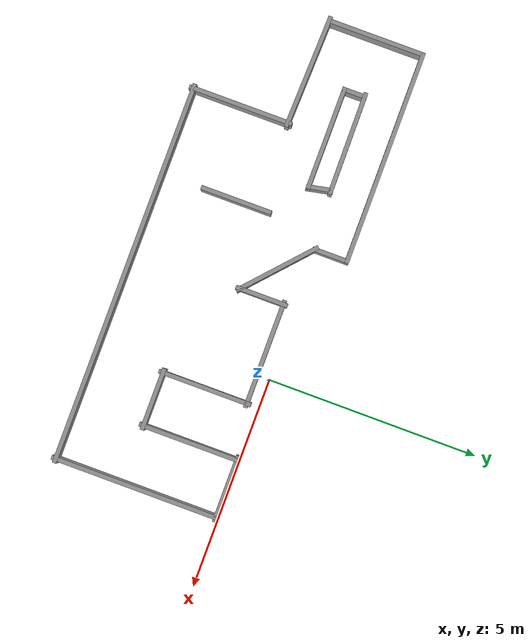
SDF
<?xml version='1.0'?>
<sdf version='1.5'>
  <model name='sensing_environment'>
    <link name='Wall_0'>
      <collision name='Wall_0_Collision'>
        <geometry>
          <box>
            <size>2.47599 0.1 0.5</size>
          </box>
        </geometry>
        <pose>0 0 0.25 0 -0 0</pose>
      </collision>
      <visual name='Wall_0_Visual'>
        <pose>0 0 0.25 0 -0 0</pose>
        <geometry>
          <box>
            <size>2.47599 0.1 0.5</size>
          </box>
        </geometry>
        <material>
          <script>
            <uri>file://media/materials/scripts/gazebo.material</uri>
            <name>Gazebo/Grey</name>
          </script>
        </material>
      </visual>
      <velocity_decay>
        <linear>0</linear>
        <angular>0</angular>
      </velocity_decay>
      <pose>-5.61297 -2.75592 0 0 0 -1.5708</pose>
    </link>
    <link name='Wall_1'>
      <collision name='Wall_1_Collision'>
        <geometry>
          <box>
            <size>9.13006 0.1 0.5</size>
          </box>
        </geometry>
        <pose>0 0 0.25 0 -0 0</pose>
      </collision>
      <visual name='Wall_1_Visual'>
        <pose>0 0 0.25 0 -0 0</pose>
        <geometry>
          <box>
            <size>9.13006 0.1 0.5</size>
          </box>
        </geometry>
        <material>
          <script>
            <uri>file://media/materials/scripts/gazebo.material</uri>
            <name>Gazebo/Grey</name>
          </script>
        </material>
      </visual>
      <velocity_decay>
        <linear>0</linear>
        <angular>0</angular>
      </velocity_decay>
      <pose>-1.14794 -3.89391 0 0 -0 0</pose>
    </link>
    <link name='Wall_10'>
      <collision name='Wall_10_Collision'>
        <geometry>
          <box>
            <size>0.886478 0.1 0.5</size>
          </box>
        </geometry>
        <pose>0 0 0.25 0 -0 0</pose>
      </collision>
      <visual name='Wall_10_Visual'>
        <pose>0 0 0.25 0 -0 0</pose>
        <geometry>
          <box>
            <size>0.886478 0.1 0.5</size>
          </box>
        </geometry>
        <material>
          <script>
            <uri>file://media/materials/scripts/gazebo.material</uri>
            <name>Gazebo/Grey</name>
          </script>
        </material>
      </visual>
      <velocity_decay>
        <linear>0</linear>
        <angular>0</angular>
      </velocity_decay>
      <pose>-3.12416 0.335761 0 0 -0 1.5704</pose>
    </link>
    <link name='Wall_11'>
      <collision name='Wall_11_Collision'>
        <geometry>
          <box>
            <size>5.097 0.1 0.5</size>
          </box>
        </geometry>
        <pose>0 0 0.25 0 -0 0</pose>
      </collision>
      <visual name='Wall_11_Visual'>
        <pose>0 0 0.25 0 -0 0</pose>
        <geometry>
          <box>
            <size>5.097 0.1 0.5</size>
          </box>
        </geometry>
        <material>
          <script>
            <uri>file://media/materials/scripts/gazebo.material</uri>
            <name>Gazebo/Grey</name>
          </script>
        </material>
      </visual>
      <velocity_decay>
        <linear>0</linear>
        <angular>0</angular>
      </velocity_decay>
      <pose>-5.6225 0.729 0 0 -0 3.14159</pose>
    </link>
    <link name='Wall_12'>
      <collision name='Wall_12_Collision'>
        <geometry>
          <box>
            <size>2.36684 0.1 0.5</size>
          </box>
        </geometry>
        <pose>0 0 0.25 0 -0 0</pose>
      </collision>
      <visual name='Wall_12_Visual'>
        <pose>0 0 0.25 0 -0 0</pose>
        <geometry>
          <box>
            <size>2.36684 0.1 0.5</size>
          </box>
        </geometry>
        <material>
          <script>
            <uri>file://media/materials/scripts/gazebo.material</uri>
            <name>Gazebo/Grey</name>
          </script>
        </material>
      </visual>
      <velocity_decay>
        <linear>0</linear>
        <angular>0</angular>
      </velocity_decay>
      <pose>-8.12076 -0.404419 0 0 0 -1.57058</pose>
    </link>
    <link name='Wall_13'>
      <collision name='Wall_13_Collision'>
        <geometry>
          <box>
            <size>2.70883 0.1 0.5</size>
          </box>
        </geometry>
        <pose>0 0 0.25 0 -0 0</pose>
      </collision>
      <visual name='Wall_13_Visual'>
        <pose>0 0 0.25 0 -0 0</pose>
        <geometry>
          <box>
            <size>2.70883 0.1 0.5</size>
          </box>
        </geometry>
        <material>
          <script>
            <uri>file://media/materials/scripts/gazebo.material</uri>
            <name>Gazebo/Grey</name>
          </script>
        </material>
      </visual>
      <velocity_decay>
        <linear>0</linear>
        <angular>0</angular>
      </velocity_decay>
      <pose>-6.86674 -1.57788 0 0 0 -0.031926</pose>
    </link>
    <link name='Wall_15'>
      <collision name='Wall_15_Collision'>
        <geometry>
          <box>
            <size>0.589506 0.1 0.5</size>
          </box>
        </geometry>
        <pose>0 0 0.25 0 -0 0</pose>
      </collision>
      <visual name='Wall_15_Visual'>
        <pose>0 0 0.25 0 -0 0</pose>
        <geometry>
          <box>
            <size>0.589506 0.1 0.5</size>
          </box>
        </geometry>
        <material>
          <script>
            <uri>file://media/materials/scripts/gazebo.material</uri>
            <name>Gazebo/Grey</name>
          </script>
        </material>
      </visual>
      <velocity_decay>
        <linear>0</linear>
        <angular>0</angular>
      </velocity_decay>
      <pose>-6.76516 -0.431247 0 0 0 -1.57015</pose>
    </link>
    <link name='Wall_16'>
      <collision name='Wall_16_Collision'>
        <geometry>
          <box>
            <size>2.456 0.1 0.5</size>
          </box>
        </geometry>
        <pose>0 0 0.25 0 -0 0</pose>
      </collision>
      <visual name='Wall_16_Visual'>
        <pose>0 0 0.25 0 -0 0</pose>
        <geometry>
          <box>
            <size>2.456 0.1 0.5</size>
          </box>
        </geometry>
        <material>
          <script>
            <uri>file://media/materials/scripts/gazebo.material</uri>
            <name>Gazebo/Grey</name>
          </script>
        </material>
      </visual>
      <velocity_decay>
        <linear>0</linear>
        <angular>0</angular>
      </velocity_decay>
      <pose>-5.587 -0.676 0 0 -0 0</pose>
    </link>
    <link name='Wall_17'>
      <collision name='Wall_17_Collision'>
        <geometry>
          <box>
            <size>0.616783 0.1 0.5</size>
          </box>
        </geometry>
        <pose>0 0 0.25 0 -0 0</pose>
      </collision>
      <visual name='Wall_17_Visual'>
        <pose>0 0 0.25 0 -0 0</pose>
        <geometry>
          <box>
            <size>0.616783 0.1 0.5</size>
          </box>
        </geometry>
        <material>
          <script>
            <uri>file://media/materials/scripts/gazebo.material</uri>
            <name>Gazebo/Grey</name>
          </script>
        </material>
      </visual>
      <velocity_decay>
        <linear>0</linear>
        <angular>0</angular>
      </velocity_decay>
      <pose>-4.45905 -0.422502 0 0 -0 1.76572</pose>
    </link>
    <link name='Wall_18'>
      <collision name='Wall_18_Collision'>
        <geometry>
          <box>
            <size>2.45629 0.1 0.5</size>
          </box>
        </geometry>
        <pose>0 0 0.25 0 -0 0</pose>
      </collision>
      <visual name='Wall_18_Visual'>
        <pose>0 0 0.25 0 -0 0</pose>
        <geometry>
          <box>
            <size>2.45629 0.1 0.5</size>
          </box>
        </geometry>
        <material>
          <script>
            <uri>file://media/materials/scripts/gazebo.material</uri>
            <name>Gazebo/Grey</name>
          </script>
        </material>
      </visual>
      <velocity_decay>
        <linear>0</linear>
        <angular>0</angular>
      </velocity_decay>
      <pose>-5.63721 -0.177749 0 0 0 -3.13384</pose>
    </link>
    <link name='Wall_2'>
      <collision name='Wall_2_Collision'>
        <geometry>
          <box>
            <size>4.03643 0.1 0.5</size>
          </box>
        </geometry>
        <pose>0 0 0.25 0 -0 0</pose>
      </collision>
      <visual name='Wall_2_Visual'>
        <pose>0 0 0.25 0 -0 0</pose>
        <geometry>
          <box>
            <size>4.03643 0.1 0.5</size>
          </box>
        </geometry>
        <material>
          <script>
            <uri>file://media/materials/scripts/gazebo.material</uri>
            <name>Gazebo/Grey</name>
          </script>
        </material>
      </visual>
      <velocity_decay>
        <linear>0</linear>
        <angular>0</angular>
      </velocity_decay>
      <pose>3.31709 -1.9757 0 0 -0 1.5708</pose>
    </link>
    <link name='Wall_20'>
      <collision name='Wall_20_Collision'>
        <geometry>
          <box>
            <size>1.68868 0.1 0.5</size>
          </box>
        </geometry>
        <pose>0 0 0.25 0 -0 0</pose>
      </collision>
      <visual name='Wall_20_Visual'>
        <pose>0 0 0.25 0 -0 0</pose>
        <geometry>
          <box>
            <size>1.68868 0.1 0.5</size>
          </box>
        </geometry>
        <material>
          <script>
            <uri>file://media/materials/scripts/gazebo.material</uri>
            <name>Gazebo/Grey</name>
          </script>
        </material>
      </visual>
      <velocity_decay>
        <linear>0</linear>
        <angular>0</angular>
      </velocity_decay>
      <pose>-3.561 -2.1035 0 0 0 -1.5708</pose>
    </link>
    <link name='Wall_3'>
      <collision name='Wall_3_Collision'>
        <geometry>
          <box>
            <size>1.5758 0.1 0.5</size>
          </box>
        </geometry>
        <pose>0 0 0.25 0 -0 0</pose>
      </collision>
      <visual name='Wall_3_Visual'>
        <pose>0 0 0.25 0 -0 0</pose>
        <geometry>
          <box>
            <size>1.5758 0.1 0.5</size>
          </box>
        </geometry>
        <material>
          <script>
            <uri>file://media/materials/scripts/gazebo.material</uri>
            <name>Gazebo/Grey</name>
          </script>
        </material>
      </visual>
      <velocity_decay>
        <linear>0</linear>
        <angular>0</angular>
      </velocity_decay>
      <pose>2.62919 -0.057478 0 0 -0 3.14159</pose>
    </link>
    <link name='Wall_4'>
      <collision name='Wall_4_Collision'>
        <geometry>
          <box>
            <size>2.44367 0.1 0.5</size>
          </box>
        </geometry>
        <pose>0 0 0.25 0 -0 0</pose>
      </collision>
      <visual name='Wall_4_Visual'>
        <pose>0 0 0.25 0 -0 0</pose>
        <geometry>
          <box>
            <size>2.44367 0.1 0.5</size>
          </box>
        </geometry>
        <material>
          <script>
            <uri>file://media/materials/scripts/gazebo.material</uri>
            <name>Gazebo/Grey</name>
          </script>
        </material>
      </visual>
      <velocity_decay>
        <linear>0</linear>
        <angular>0</angular>
      </velocity_decay>
      <pose>1.94129 -1.17931 0 0 0 -1.5708</pose>
    </link>
    <link name='Wall_5'>
      <collision name='Wall_5_Collision'>
        <geometry>
          <box>
            <size>1.47218 0.1 0.5</size>
          </box>
        </geometry>
        <pose>0 0 0.25 0 -0 0</pose>
      </collision>
      <visual name='Wall_5_Visual'>
        <pose>0 0 0.25 0 -0 0</pose>
        <geometry>
          <box>
            <size>1.47218 0.1 0.5</size>
          </box>
        </geometry>
        <material>
          <script>
            <uri>file://media/materials/scripts/gazebo.material</uri>
            <name>Gazebo/Grey</name>
          </script>
        </material>
      </visual>
      <velocity_decay>
        <linear>0</linear>
        <angular>0</angular>
      </velocity_decay>
      <pose>1.3052 -2.30115 0 0 -0 3.14159</pose>
    </link>
    <link name='Wall_6'>
      <collision name='Wall_6_Collision'>
        <geometry>
          <box>
            <size>2.21236 0.1 0.5</size>
          </box>
        </geometry>
        <pose>0 0 0.25 0 -0 0</pose>
      </collision>
      <visual name='Wall_6_Visual'>
        <pose>0 0 0.25 0 -0 0</pose>
        <geometry>
          <box>
            <size>2.21236 0.1 0.5</size>
          </box>
        </geometry>
        <material>
          <script>
            <uri>file://media/materials/scripts/gazebo.material</uri>
            <name>Gazebo/Grey</name>
          </script>
        </material>
      </visual>
      <velocity_decay>
        <linear>0</linear>
        <angular>0</angular>
      </velocity_decay>
      <pose>0.66911 -1.29497 0 0 -0 1.5708</pose>
    </link>
    <link name='Wall_7'>
      <collision name='Wall_7_Collision'>
        <geometry>
          <box>
            <size>2.58245 0.1 0.5</size>
          </box>
        </geometry>
        <pose>0 0 0.25 0 -0 0</pose>
      </collision>
      <visual name='Wall_7_Visual'>
        <pose>0 0 0.25 0 -0 0</pose>
        <geometry>
          <box>
            <size>2.58245 0.1 0.5</size>
          </box>
        </geometry>
        <material>
          <script>
            <uri>file://media/materials/scripts/gazebo.material</uri>
            <name>Gazebo/Grey</name>
          </script>
        </material>
      </visual>
      <velocity_decay>
        <linear>0</linear>
        <angular>0</angular>
      </velocity_decay>
      <pose>-0.522116 -0.288784 0 0 -0 3.14159</pose>
    </link>
    <link name='Wall_8'>
      <collision name='Wall_8_Collision'>
        <geometry>
          <box>
            <size>1.24088 0.1 0.5</size>
          </box>
        </geometry>
        <pose>0 0 0.25 0 -0 0</pose>
      </collision>
      <visual name='Wall_8_Visual'>
        <pose>0 0 0.25 0 -0 0</pose>
        <geometry>
          <box>
            <size>1.24088 0.1 0.5</size>
          </box>
        </geometry>
        <material>
          <script>
            <uri>file://media/materials/scripts/gazebo.material</uri>
            <name>Gazebo/Grey</name>
          </script>
        </material>
      </visual>
      <velocity_decay>
        <linear>0</linear>
        <angular>0</angular>
      </velocity_decay>
      <pose>-1.71334 -0.809223 0 0 0 -1.5708</pose>
    </link>
    <link name='Wall_9'>
      <collision name='Wall_9_Collision'>
        <geometry>
          <box>
            <size>2.09981 0.1 0.5</size>
          </box>
        </geometry>
        <pose>0 0 0.25 0 -0 0</pose>
      </collision>
      <visual name='Wall_9_Visual'>
        <pose>0 0 0.25 0 -0 0</pose>
        <geometry>
          <box>
            <size>2.09981 0.1 0.5</size>
          </box>
        </geometry>
        <material>
          <script>
            <uri>file://media/materials/scripts/gazebo.material</uri>
            <name>Gazebo/Grey</name>
          </script>
        </material>
      </visual>
      <velocity_decay>
        <linear>0</linear>
        <angular>0</angular>
      </velocity_decay>
      <pose>-2.41883 -0.69357 0 0 -0 2.40787</pose>
    </link>
    <static>1</static>
  </model>
</sdf>
